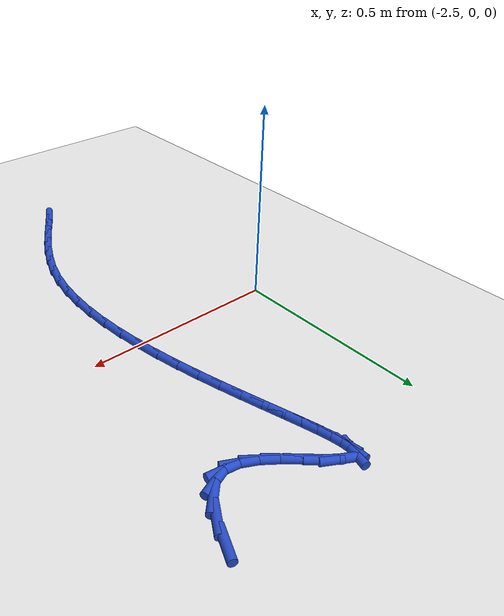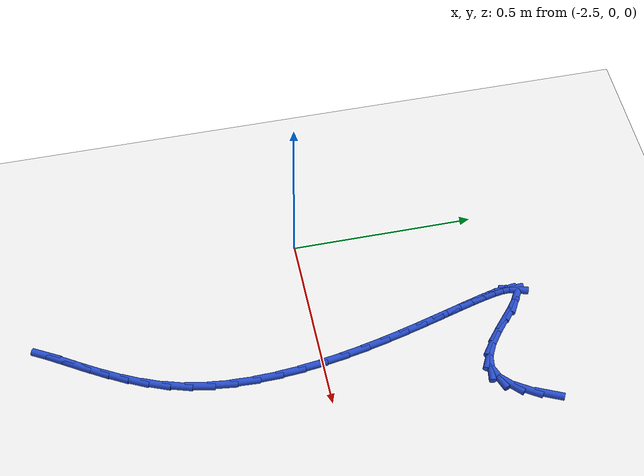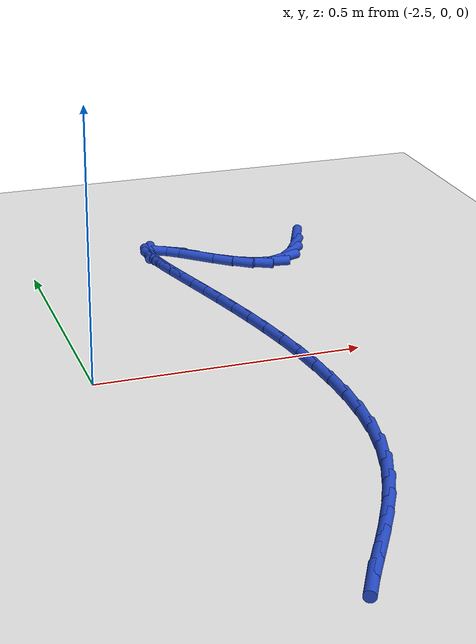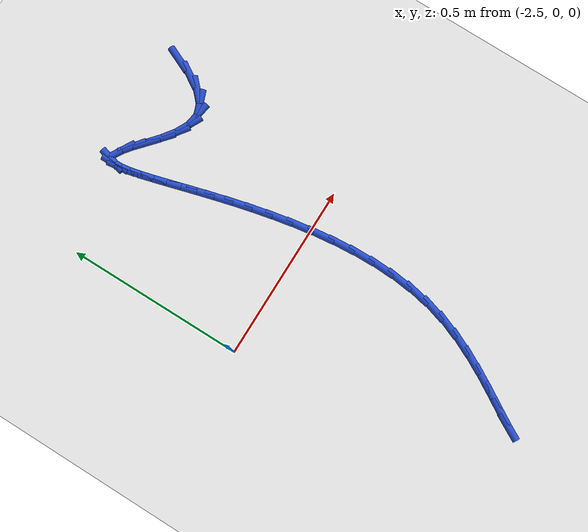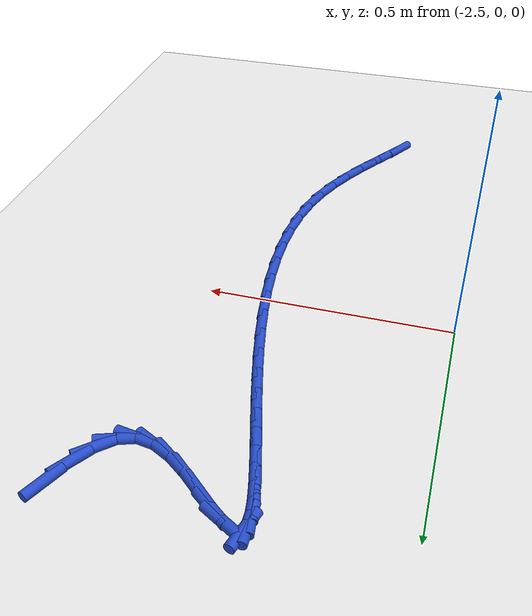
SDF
<sdf version="1.6">
 <world name="default">
  <model name="ground_plane">
   <static>1</static>
   <link name="link">
    <collision name="collision">
     <geometry><plane><normal>0 0 1</normal><size>100 100</size></plane></geometry>
     <surface><friction><ode><mu>100</mu><mu2>50</mu2></ode></friction></surface>
    </collision>
    <visual name="visual">
     <cast_shadows>0</cast_shadows>
     <geometry><plane><normal>0 0 1</normal><size>100 100</size></plane></geometry>
     <material>
      <script><uri>file://media/materials/scripts/gazebo.material</uri><name>Gazebo/WhiteGlow</name></script>
     </material>
    </visual>
   </link>
  </model>
  <model name="line">
   <link name="link_92">
    <pose>-1.9095831007152042 0.5527693771368855 0.01 0 1.57 1.1478802701288995</pose>
    <collision name="collision">
     <geometry><cylinder><radius>0.01</radius><length>0.08</length></cylinder></geometry>
    </collision>
    <visual name="visual">
     <material>
      <script><name>Gazebo/Blue</name><uri>file://media/materials/scripts/gazebo.material</uri></script>
     </material>
     <geometry><cylinder><radius>0.01</radius><length>0.08</length></cylinder></geometry>
    </visual>
   </link>
   <link name="link_93">
    <pose>-1.9317079587030639 0.5036111878475498 0.01 0 1.57 1.002477298806502</pose>
    <collision name="collision">
     <geometry><cylinder><radius>0.01</radius><length>0.08</length></cylinder></geometry>
    </collision>
    <visual name="visual">
     <material>
      <script><name>Gazebo/Blue</name><uri>file://media/materials/scripts/gazebo.material</uri></script>
     </material>
     <geometry><cylinder><radius>0.01</radius><length>0.08</length></cylinder></geometry>
    </visual>
   </link>
   <link name="link_94">
    <pose>-1.9566763570647396 0.4645125076160823 0.01 0 1.57 0.7589713587241775</pose>
    <collision name="collision">
     <geometry><cylinder><radius>0.01</radius><length>0.08</length></cylinder></geometry>
    </collision>
    <visual name="visual">
     <material>
      <script><name>Gazebo/Blue</name><uri>file://media/materials/scripts/gazebo.material</uri></script>
     </material>
     <geometry><cylinder><radius>0.01</radius><length>0.08</length></cylinder></geometry>
    </visual>
   </link>
   <link name="link_95">
    <pose>-1.98459252894679 0.43803414421904563 0.01 0 1.57 0.34979970310285424</pose>
    <collision name="collision">
     <geometry><cylinder><radius>0.01</radius><length>0.08</length></cylinder></geometry>
    </collision>
    <visual name="visual">
     <material>
      <script><name>Gazebo/Blue</name><uri>file://media/materials/scripts/gazebo.material</uri></script>
     </material>
     <geometry><cylinder><radius>0.01</radius><length>0.08</length></cylinder></geometry>
    </visual>
   </link>
   <link name="link_96">
    <pose>-2.0155607074957738 0.42673690543300047 0.01 0 1.57 -0.1526729323194739</pose>
    <collision name="collision">
     <geometry><cylinder><radius>0.01</radius><length>0.08</length></cylinder></geometry>
    </collision>
    <visual name="visual">
     <material>
      <script><name>Gazebo/Blue</name><uri>file://media/materials/scripts/gazebo.material</uri></script>
     </material>
     <geometry><cylinder><radius>0.01</radius><length>0.08</length></cylinder></geometry>
    </visual>
   </link>
   <link name="link_97">
    <pose>-2.0493783749105563 0.43194044062244885 0.01 0 1.57 -0.4702387831808139</pose>
    <collision name="collision">
     <geometry><cylinder><radius>0.01</radius><length>0.08</length></cylinder></geometry>
    </collision>
    <visual name="visual">
     <material>
      <script><name>Gazebo/Blue</name><uri>file://media/materials/scripts/gazebo.material</uri></script>
     </material>
     <geometry><cylinder><radius>0.01</radius><length>0.08</length></cylinder></geometry>
    </visual>
   </link>
   <link name="link_98">
    <pose>-2.0845738313068907 0.44982910607211296 0.01 0 1.57 -0.631433915418022</pose>
    <collision name="collision">
     <geometry><cylinder><radius>0.01</radius><length>0.08</length></cylinder></geometry>
    </collision>
    <visual name="visual">
     <material>
      <script><name>Gazebo/Blue</name><uri>file://media/materials/scripts/gazebo.material</uri></script>
     </material>
     <geometry><cylinder><radius>0.01</radius><length>0.08</length></cylinder></geometry>
    </visual>
   </link>
   <link name="link_99">
    <pose>-2.119347176751233 0.475259313507504 0.01 0 1.57 -0.7073323193499907</pose>
    <collision name="collision">
     <geometry><cylinder><radius>0.01</radius><length>0.08</length></cylinder></geometry>
    </collision>
    <visual name="visual">
     <material>
      <script><name>Gazebo/Blue</name><uri>file://media/materials/scripts/gazebo.material</uri></script>
     </material>
     <geometry><cylinder><radius>0.01</radius><length>0.08</length></cylinder></geometry>
    </visual>
   </link>
   <link name="link_100">
    <pose>-2.1518985108563737 0.5030874728185336 0.01 0 1.57 -0.7211929996308618</pose>
    <collision name="collision">
     <geometry><cylinder><radius>0.01</radius><length>0.08</length></cylinder></geometry>
    </collision>
    <visual name="visual">
     <material>
      <script><name>Gazebo/Blue</name><uri>file://media/materials/scripts/gazebo.material</uri></script>
     </material>
     <geometry><cylinder><radius>0.01</radius><length>0.08</length></cylinder></geometry>
    </visual>
   </link>
   <link name="link_101">
    <pose>-2.1804279332351038 0.5281699938951148 0.01 0 1.57 -0.6603225205348383</pose>
    <collision name="collision">
     <geometry><cylinder><radius>0.01</radius><length>0.08</length></cylinder></geometry>
    </collision>
    <visual name="visual">
     <material>
      <script><name>Gazebo/Blue</name><uri>file://media/materials/scripts/gazebo.material</uri></script>
     </material>
     <geometry><cylinder><radius>0.01</radius><length>0.08</length></cylinder></geometry>
    </visual>
   </link>
   <link name="link_102">
    <pose>-2.203397338243139 0.5460085352333544 0.01 0 1.57 -0.5118759057970284</pose>
    <collision name="collision">
     <geometry><cylinder><radius>0.01</radius><length>0.08</length></cylinder></geometry>
    </collision>
    <visual name="visual">
     <material>
      <script><name>Gazebo/Blue</name><uri>file://media/materials/scripts/gazebo.material</uri></script>
     </material>
     <geometry><cylinder><radius>0.01</radius><length>0.08</length></cylinder></geometry>
    </visual>
   </link>
   <link name="link_105">
    <pose>-2.2404724127503903 0.5527502634701962 0.01 0 1.57 1.2997834457611077</pose>
    <collision name="collision">
     <geometry><cylinder><radius>0.01</radius><length>0.08</length></cylinder></geometry>
    </collision>
    <visual name="visual">
     <material>
      <script><name>Gazebo/Blue</name><uri>file://media/materials/scripts/gazebo.material</uri></script>
     </material>
     <geometry><cylinder><radius>0.01</radius><length>0.08</length></cylinder></geometry>
    </visual>
   </link>
   <link name="link_106">
    <pose>-2.24377208531305 0.5408744831220241 0.01 0 1.57 -1.5459035653549602</pose>
    <collision name="collision">
     <geometry><cylinder><radius>0.01</radius><length>0.08</length></cylinder></geometry>
    </collision>
    <visual name="visual">
     <material>
      <script><name>Gazebo/Blue</name><uri>file://media/materials/scripts/gazebo.material</uri></script>
     </material>
     <geometry><cylinder><radius>0.01</radius><length>0.08</length></cylinder></geometry>
    </visual>
   </link>
   <link name="link_107">
    <pose>-2.243318882525013 0.5226720359450925 0.01 0 1.57 -1.4167554907817101</pose>
    <collision name="collision">
     <geometry><cylinder><radius>0.01</radius><length>0.08</length></cylinder></geometry>
    </collision>
    <visual name="visual">
     <material>
      <script><name>Gazebo/Blue</name><uri>file://media/materials/scripts/gazebo.material</uri></script>
     </material>
     <geometry><cylinder><radius>0.01</radius><length>0.08</length></cylinder></geometry>
    </visual>
   </link>
   <link name="link_108">
    <pose>-2.2395786848577903 0.49858382877028073 0.01 0 1.57 -1.3521786931285824</pose>
    <collision name="collision">
     <geometry><cylinder><radius>0.01</radius><length>0.08</length></cylinder></geometry>
    </collision>
    <visual name="visual">
     <material>
      <script><name>Gazebo/Blue</name><uri>file://media/materials/scripts/gazebo.material</uri></script>
     </material>
     <geometry><cylinder><radius>0.01</radius><length>0.08</length></cylinder></geometry>
    </visual>
   </link>
   <link name="link_109">
    <pose>-2.233017372782893 0.4690507684284695 0.01 0 1.57 -1.3181397086267796</pose>
    <collision name="collision">
     <geometry><cylinder><radius>0.01</radius><length>0.08</length></cylinder></geometry>
    </collision>
    <visual name="visual">
     <material>
      <script><name>Gazebo/Blue</name><uri>file://media/materials/scripts/gazebo.material</uri></script>
     </material>
     <geometry><cylinder><radius>0.01</radius><length>0.08</length></cylinder></geometry>
    </visual>
   </link>
   <link name="link_110">
    <pose>-2.224100826771829 0.4345137617505381 0.01 0 1.57 -1.301161168196966</pose>
    <collision name="collision">
     <geometry><cylinder><radius>0.01</radius><length>0.08</length></cylinder></geometry>
    </collision>
    <visual name="visual">
     <material>
      <script><name>Gazebo/Blue</name><uri>file://media/materials/scripts/gazebo.material</uri></script>
     </material>
     <geometry><cylinder><radius>0.01</radius><length>0.08</length></cylinder></geometry>
    </visual>
   </link>
   <link name="link_111">
    <pose>-2.21329492729611 0.3954137155673669 0.01 0 1.57 -1.295061538411857</pose>
    <collision name="collision">
     <geometry><cylinder><radius>0.01</radius><length>0.08</length></cylinder></geometry>
    </collision>
    <visual name="visual">
     <material>
      <script><name>Gazebo/Blue</name><uri>file://media/materials/scripts/gazebo.material</uri></script>
     </material>
     <geometry><cylinder><radius>0.01</radius><length>0.08</length></cylinder></geometry>
    </visual>
   </link>
   <link name="link_112">
    <pose>-2.201065554827246 0.3521915367098353 0.01 0 1.57 -1.296720110162653</pose>
    <collision name="collision">
     <geometry><cylinder><radius>0.01</radius><length>0.08</length></cylinder></geometry>
    </collision>
    <visual name="visual">
     <material>
      <script><name>Gazebo/Blue</name><uri>file://media/materials/scripts/gazebo.material</uri></script>
     </material>
     <geometry><cylinder><radius>0.01</radius><length>0.08</length></cylinder></geometry>
    </visual>
   </link>
   <link name="link_113">
    <pose>-2.1878785898367457 0.30528813200882415 0.01 0 1.57 -1.304486438759034</pose>
    <collision name="collision">
     <geometry><cylinder><radius>0.01</radius><length>0.08</length></cylinder></geometry>
    </collision>
    <visual name="visual">
     <material>
      <script><name>Gazebo/Blue</name><uri>file://media/materials/scripts/gazebo.material</uri></script>
     </material>
     <geometry><cylinder><radius>0.01</radius><length>0.08</length></cylinder></geometry>
    </visual>
   </link>
   <link name="link_114">
    <pose>-2.17419991279612 0.25514440829521223 0.01 0 1.57 -1.317502602987457</pose>
    <collision name="collision">
     <geometry><cylinder><radius>0.01</radius><length>0.08</length></cylinder></geometry>
    </collision>
    <visual name="visual">
     <material>
      <script><name>Gazebo/Blue</name><uri>file://media/materials/scripts/gazebo.material</uri></script>
     </material>
     <geometry><cylinder><radius>0.01</radius><length>0.08</length></cylinder></geometry>
    </visual>
   </link>
   <link name="link_115">
    <pose>-2.1604954041768787 0.20220127239988092 0.01 0 1.57 -1.3353870074837655</pose>
    <collision name="collision">
     <geometry><cylinder><radius>0.01</radius><length>0.08</length></cylinder></geometry>
    </collision>
    <visual name="visual">
     <material>
      <script><name>Gazebo/Blue</name><uri>file://media/materials/scripts/gazebo.material</uri></script>
     </material>
     <geometry><cylinder><radius>0.01</radius><length>0.08</length></cylinder></geometry>
    </visual>
   </link>
   <link name="link_116">
    <pose>-2.1472309444505315 0.1468996311537093 0.01 0 1.57 -1.3580783287999645</pose>
    <collision name="collision">
     <geometry><cylinder><radius>0.01</radius><length>0.08</length></cylinder></geometry>
    </collision>
    <visual name="visual">
     <material>
      <script><name>Gazebo/Blue</name><uri>file://media/materials/scripts/gazebo.material</uri></script>
     </material>
     <geometry><cylinder><radius>0.01</radius><length>0.08</length></cylinder></geometry>
    </visual>
   </link>
   <link name="link_117">
    <pose>-2.1348724140885897 0.08968039138757608 0.01 0 1.57 -1.3857572621649352</pose>
    <collision name="collision">
     <geometry><cylinder><radius>0.01</radius><length>0.08</length></cylinder></geometry>
    </collision>
    <visual name="visual">
     <material>
      <script><name>Gazebo/Blue</name><uri>file://media/materials/scripts/gazebo.material</uri></script>
     </material>
     <geometry><cylinder><radius>0.01</radius><length>0.08</length></cylinder></geometry>
    </visual>
   </link>
   <link name="link_118">
    <pose>-2.1238856935625616 0.030984459932363886 0.01 0 1.57 -1.4188088414333546</pose>
    <collision name="collision">
     <geometry><cylinder><radius>0.01</radius><length>0.08</length></cylinder></geometry>
    </collision>
    <visual name="visual">
     <material>
      <script><name>Gazebo/Blue</name><uri>file://media/materials/scripts/gazebo.material</uri></script>
     </material>
     <geometry><cylinder><radius>0.01</radius><length>0.08</length></cylinder></geometry>
    </visual>
   </link>
   <link name="link_119">
    <pose>-2.1147366633439586 -0.02874725638104872 0.01 0 1.57 -1.4578063050962744</pose>
    <collision name="collision">
     <geometry><cylinder><radius>0.01</radius><length>0.08</length></cylinder></geometry>
    </collision>
    <visual name="visual">
     <material>
      <script><name>Gazebo/Blue</name><uri>file://media/materials/scripts/gazebo.material</uri></script>
     </material>
     <geometry><cylinder><radius>0.01</radius><length>0.08</length></cylinder></geometry>
    </visual>
   </link>
   <link name="link_120">
    <pose>-2.1078912039042903 -0.08907385072178167 0.01 0 1.57 -1.503504396519858</pose>
    <collision name="collision">
     <geometry><cylinder><radius>0.01</radius><length>0.08</length></cylinder></geometry>
    </collision>
    <visual name="visual">
     <material>
      <script><name>Gazebo/Blue</name><uri>file://media/materials/scripts/gazebo.material</uri></script>
     </material>
     <geometry><cylinder><radius>0.01</radius><length>0.08</length></cylinder></geometry>
    </visual>
   </link>
   <link name="link_121">
    <pose>-2.1038151957150664 -0.14955441625895513 0.01 0 1.57 -1.5568310315354534</pose>
    <collision name="collision">
     <geometry><cylinder><radius>0.01</radius><length>0.08</length></cylinder></geometry>
    </collision>
    <visual name="visual">
     <material>
      <script><name>Gazebo/Blue</name><uri>file://media/materials/scripts/gazebo.material</uri></script>
     </material>
     <geometry><cylinder><radius>0.01</radius><length>0.08</length></cylinder></geometry>
    </visual>
   </link>
   <link name="link_122">
    <pose>-2.1029745192477973 -0.20974804616169077 0.01 0 1.57 1.5227294887673462</pose>
    <collision name="collision">
     <geometry><cylinder><radius>0.01</radius><length>0.08</length></cylinder></geometry>
    </collision>
    <visual name="visual">
     <material>
      <script><name>Gazebo/Blue</name><uri>file://media/materials/scripts/gazebo.material</uri></script>
     </material>
     <geometry><cylinder><radius>0.01</radius><length>0.08</length></cylinder></geometry>
    </visual>
   </link>
   <link name="link_123">
    <pose>-2.1058350549739924 -0.26921383359910533 0.01 0 1.57 1.4508265888066054</pose>
    <collision name="collision">
     <geometry><cylinder><radius>0.01</radius><length>0.08</length></cylinder></geometry>
    </collision>
    <visual name="visual">
     <material>
      <script><name>Gazebo/Blue</name><uri>file://media/materials/scripts/gazebo.material</uri></script>
     </material>
     <geometry><cylinder><radius>0.01</radius><length>0.08</length></cylinder></geometry>
    </visual>
   </link>
   <link name="link_124">
    <pose>-2.1128626833651625 -0.3275108717403207 0.01 0 1.57 1.3679259343271106</pose>
    <collision name="collision">
     <geometry><cylinder><radius>0.01</radius><length>0.08</length></cylinder></geometry>
    </collision>
    <visual name="visual">
     <material>
      <script><name>Gazebo/Blue</name><uri>file://media/materials/scripts/gazebo.material</uri></script>
     </material>
     <geometry><cylinder><radius>0.01</radius><length>0.08</length></cylinder></geometry>
    </visual>
   </link>
   <link name="link_125">
    <pose>-2.124523284892817 -0.3841982537544567 0.01 0 1.57 1.2745959543421672</pose>
    <collision name="collision">
     <geometry><cylinder><radius>0.01</radius><length>0.08</length></cylinder></geometry>
    </collision>
    <visual name="visual">
     <material>
      <script><name>Gazebo/Blue</name><uri>file://media/materials/scripts/gazebo.material</uri></script>
     </material>
     <geometry><cylinder><radius>0.01</radius><length>0.08</length></cylinder></geometry>
    </visual>
   </link>
   <link name="link_126">
    <pose>-2.141199902996702 -0.43884381524841887 0.01 0 1.57 1.1883047163483496</pose>
    <collision name="collision">
     <geometry><cylinder><radius>0.01</radius><length>0.08</length></cylinder></geometry>
    </collision>
    <visual name="visual">
     <material>
      <script><name>Gazebo/Blue</name><uri>file://media/materials/scripts/gazebo.material</uri></script>
     </material>
     <geometry><cylinder><radius>0.01</radius><length>0.08</length></cylinder></geometry>
    </visual>
   </link>
   <link name="link_127">
    <pose>-2.1622330383114146 -0.4911254194993059 0.01 0 1.57 1.1204038438040944</pose>
    <collision name="collision">
     <geometry><cylinder><radius>0.01</radius><length>0.08</length></cylinder></geometry>
    </collision>
    <visual name="visual">
     <material>
      <script><name>Gazebo/Blue</name><uri>file://media/materials/scripts/gazebo.material</uri></script>
     </material>
     <geometry><cylinder><radius>0.01</radius><length>0.08</length></cylinder></geometry>
    </visual>
   </link>
   <link name="link_128">
    <pose>-2.1862507689394426 -0.5407961172882902 0.01 0 1.57 1.0701082917032407</pose>
    <collision name="collision">
     <geometry><cylinder><radius>0.01</radius><length>0.08</length></cylinder></geometry>
    </collision>
    <visual name="visual">
     <material>
      <script><name>Gazebo/Blue</name><uri>file://media/materials/scripts/gazebo.material</uri></script>
     </material>
     <geometry><cylinder><radius>0.01</radius><length>0.08</length></cylinder></geometry>
    </visual>
   </link>
   <link name="link_129">
    <pose>-2.2118673751948403 -0.5876104155847275 0.01 0 1.57 1.0370931501255263</pose>
    <collision name="collision">
     <geometry><cylinder><radius>0.01</radius><length>0.08</length></cylinder></geometry>
    </collision>
    <visual name="visual">
     <material>
      <script><name>Gazebo/Blue</name><uri>file://media/materials/scripts/gazebo.material</uri></script>
     </material>
     <geometry><cylinder><radius>0.01</radius><length>0.08</length></cylinder></geometry>
    </visual>
   </link>
   <link name="link_130">
    <pose>-2.2376971373916668 -0.631322821357973 0.01 0 1.57 1.0224329840297177</pose>
    <collision name="collision">
     <geometry><cylinder><radius>0.01</radius><length>0.08</length></cylinder></geometry>
    </collision>
    <visual name="visual">
     <material>
      <script><name>Gazebo/Blue</name><uri>file://media/materials/scripts/gazebo.material</uri></script>
     </material>
     <geometry><cylinder><radius>0.01</radius><length>0.08</length></cylinder></geometry>
    </visual>
   </link>
   <link name="link_131">
    <pose>-2.2623543358439795 -0.6716878415773834 0.01 0 1.57 1.0296646743495128</pose>
    <collision name="collision">
     <geometry><cylinder><radius>0.01</radius><length>0.08</length></cylinder></geometry>
    </collision>
    <visual name="visual">
     <material>
      <script><name>Gazebo/Blue</name><uri>file://media/materials/scripts/gazebo.material</uri></script>
     </material>
     <geometry><cylinder><radius>0.01</radius><length>0.08</length></cylinder></geometry>
    </visual>
   </link>
   <link name="link_132">
    <pose>-2.2844532508658335 -0.708459983212312 0.01 0 1.57 1.0669899431658216</pose>
    <collision name="collision">
     <geometry><cylinder><radius>0.01</radius><length>0.08</length></cylinder></geometry>
    </collision>
    <visual name="visual">
     <material>
      <script><name>Gazebo/Blue</name><uri>file://media/materials/scripts/gazebo.material</uri></script>
     </material>
     <geometry><cylinder><radius>0.01</radius><length>0.08</length></cylinder></geometry>
    </visual>
   </link>
  </model>
 </world>
</sdf>
